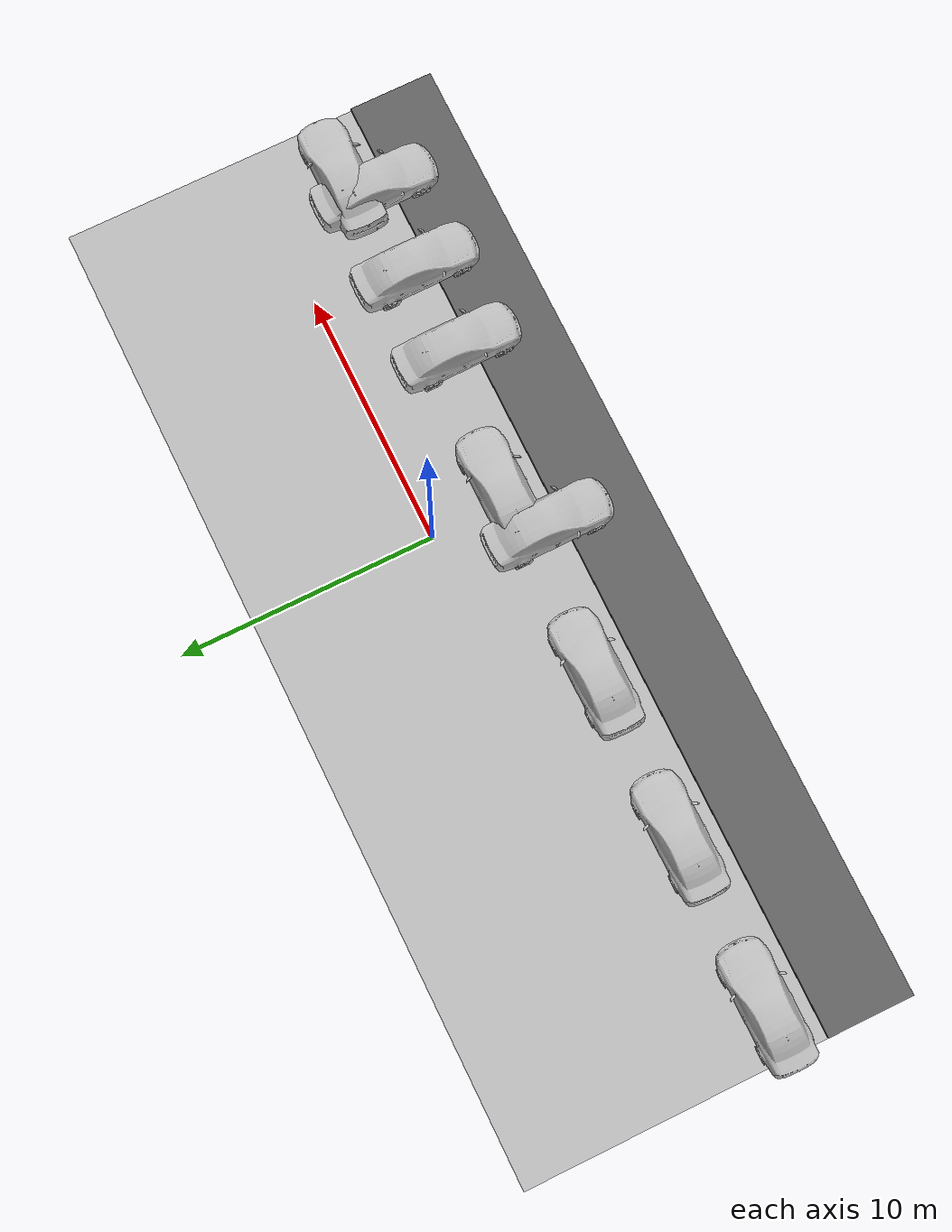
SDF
<sdf version="1.10">
 <world name="autopark">
  <plugin name="gz::sim::systems::Physics" filename="gz-sim-physics-system"/>
  <plugin name="gz::sim::systems::SceneBroadcaster" filename="gz-sim-scene-broadcaster-system"/>
  <plugin filename="gz-sim-user-commands-system" name="gz::sim::systems::UserCommands"/>
  <plugin filename="gz-sim-sensors-system" name="gz::sim::systems::Sensors">
   <render_engine>ogre2</render_engine>
  </plugin>
  <gravity>0 0 -9.8</gravity>
  <atmosphere type="adiabatic"/>
  <scene>
   <ambient>0.4 0.4 0.4 1</ambient>
   <background>0.7 0.7 0.7 1</background>
   <shadows>true</shadows>
   <grid>false</grid>
  </scene>
  <include><uri>model://sun</uri><name>sun_1</name><pose>0 0 10 0 0 0</pose></include>
  <include>
   <uri>model://autopark_line</uri>
   <pose>0 -1 0 0 0 3.14</pose>
   <uri>model://autopark_battery</uri>
   <pose>0 -3 0 0 0 3.14</pose>
   <uri>model://autopark_sideways</uri>
   <pose>0 -3 0 0 0 3.14</pose>
  </include>
  <include>
   <uri>model://opel</uri>
   <name>opel_1</name>
   <pose>-20 -3 0 1.57 0 1.57</pose>
   <pose>-20 -4 0 1.55 0 0</pose>
   <pose>-20 -4 0 1.55 0 0.349</pose>
   <static>true</static>
  </include>
  <include>
   <uri>model://opel</uri>
   <name>opel_2</name>
   <pose>-13.5 -3 0 1.57 0 1.57</pose>
   <pose>-16.5 -4 0 1.55 0 0</pose>
   <pose>-16.5 -4 0 1.55 0 0.349</pose>
   <static>true</static>
  </include>
  <include>
   <uri>model://opel</uri>
   <name>opel_3</name>
   <pose>-7 -3 0 1.57 0 1.57</pose>
   <pose>-12 -4 0 1.55 0 0</pose>
   <pose>-12 -4 0 1.55 0 0.349</pose>
   <static>true</static>
  </include>
  <include>
   <uri>model://opel</uri>
   <name>opel_4</name>
   <pose>0.5 -3 0 1.57 0 1.57</pose>
   <pose>-8.5 -4 0 1.55 0 0</pose>
   <pose>-8.5 -4 0 1.55 0 0.349</pose>
   <static>true</static>
  </include>
  <include>
   <uri>model://opel</uri>
   <name>opel_5</name>
   <pose>14 -3 0 1.57 0 1.57</pose>
   <pose>-5 -4 0 1.55 0 0</pose>
   <pose>-5 -4 0 1.55 0 0.349</pose>
   <static>true</static>
  </include>
  <include>
   <uri>model://opel</uri>
   <name>opel_6</name>
   <pose>-1.5 -4 0 1.55 0 0</pose>
   <pose>-1.5 -4 0 1.55 0 0.349</pose>
   <static>true</static>
  </include>
  <include>
   <uri>model://opel</uri>
   <name>opel_7</name>
   <pose>6 -4 0 1.55 0 0</pose>
   <pose>6 -4 0 1.55 0 0.349</pose>
   <static>true</static>
  </include>
  <include>
   <uri>model://opel</uri>
   <name>opel_8</name>
   <pose>9.5 -4 0 1.55 0 0</pose>
   <pose>9.5 -4 0 1.55 0 0.349</pose>
   <static>true</static>
  </include>
  <include>
   <uri>model://opel</uri>
   <name>opel_9</name>
   <pose>13 -4 0 1.55 0 0</pose>
   <static>true</static>
  </include>
 </world>
</sdf>

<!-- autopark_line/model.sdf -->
<sdf version="1.10">
  <model name="road">
    <static>true</static>
    <link name="road_link">
      <pose>0 0 0 0 0 0</pose>
      <visual name="road_visual">
        <geometry>
          <mesh>
            <uri>model://autopark_line/meshes/autopark_line.dae</uri>
          </mesh>
        </geometry>
      </visual>
      <collision name="road_collision">
        <geometry>
          <mesh>
            <uri>model://autopark_line/meshes/autopark_line.dae</uri>
          </mesh>
        </geometry>
      </collision>
    </link>
  </model>
</sdf>

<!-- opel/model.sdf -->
<sdf version="1.4">
<model name="opel">
  <pose>0 0 0.5 0 0 0</pose>
  <static>true</static>

  <link name="opel">
      <gravity>0</gravity> <!-- No hace falta gravedad para estático -->
      <collision name="collision">
          <geometry>
              <mesh>
                  <uri>model://opel/meshes/model.obj</uri>
              </mesh>
          </geometry>
      </collision>
      <visual name="visual">
          <geometry>
              <mesh>
                  <uri>model://opel/meshes/model.obj</uri>
              </mesh>
          </geometry>
      </visual>
  </link>

  <!-- Plugins de control o sensores no necesarios para estático -->

  <!-- Cámaras -->

</model>
</sdf>
